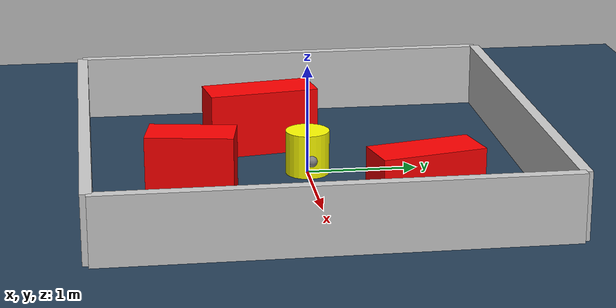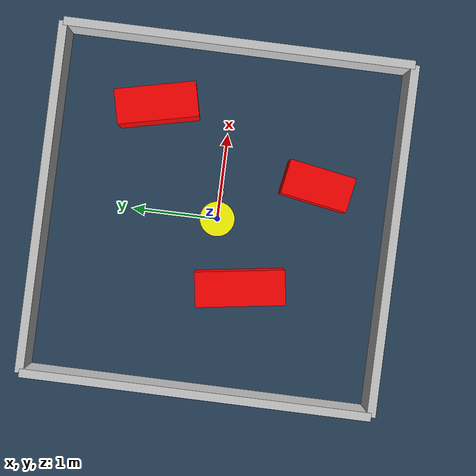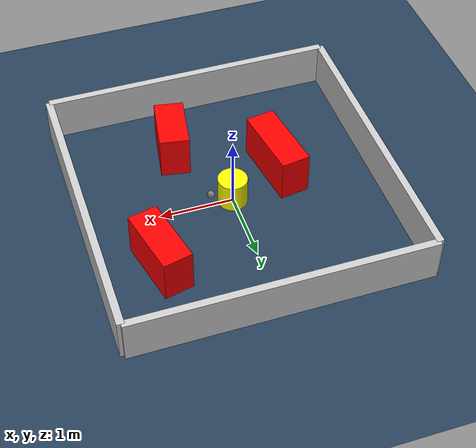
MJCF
<?xml version="1.0" ?>
<mujoco model="generated_environment">
  <option timestep="0.01" integrator="RK4" cone="elliptic"/>
  <default>
    <geom density="1"/>
  </default>
  <asset>
    <texture builtin="gradient" height="3072" rgb1="0.3 0.5 0.7" rgb2="0 0 0" type="skybox" width="512"/>
    <texture builtin="checker" height="300" mark="edge" markrgb="0.8 0.8 0.8" name="groundplane" rgb1="0.2 0.3 0.4" rgb2="0.1 0.2 0.3" type="2d" width="300"/>
    <material name="groundplane" reflectance="0.2" texrepeat="5 5" texture="groundplane" texuniform="true"/>
    <material name="robot" rgba="0.0 1.0 0.0 1"/>
  </asset>
  <worldbody>
    <light dir="0 0 -1" directional="true" pos="0 0 1.5"/>
    <geom condim="4" friction="1.0 0.005 0.001" material="groundplane" name="floor" size="0 0 0.05" type="plane"/>
    <body name="walls">
      <geom name="wall_1" condim="4" pos="-2.0 0.0 0.3" rgba="0.800000011920929 0.800000011920929 0.800000011920929 1.0" size="0.05 2.0 0.3" type="box"/>
      <geom name="wall_2" condim="4" pos="2.0 0.0 0.3" rgba="0.800000011920929 0.800000011920929 0.800000011920929 1.0" size="0.05 2.0 0.3" type="box"/>
      <geom name="wall_3" condim="4" pos="0.0 -2.0 0.3" rgba="0.800000011920929 0.800000011920929 0.800000011920929 1.0" size="2.0 0.05 0.3" type="box"/>
      <geom name="wall_4" condim="4" pos="0.0 2.0 0.3" rgba="0.800000011920929 0.800000011920929 0.800000011920929 1.0" size="2.0 0.05 0.3" type="box"/>
    </body>
    <body name="robot">
      <joint name="joint_x" type="slide" pos="0 0 0" axis="1 0 0"/>
      <joint name="joint_y" type="slide" pos="0 0 0" axis="0 1 0"/>
      <geom name="robot" type="sphere" pos="0.3 0.0 0.2" size="0.05" mass="5." friction="1.0 0.005 0.0001" condim="4" rgba="0.5 0.5 0.5 1.0"/>
      <site name="sensor_ball"/>
    </body>
    <body name="obstacle_movable_1">
      <geom name="obstacle_movable_1" condim="4" pos="0.0 0.0 0.2" euler="0 0 0.0" friction="1.0 0.005 0.001" rgba="1.0 1.0 0.0 1.0" size="0.2 0.2 0.0" type="cylinder" mass="0.1"/>
      <joint type="free"/>
    </body>
    <body name="obstacle_2_static">
      <geom name="obstacle_2_static" condim="4" pos="1.2154892742631098 0.8427557149680707 0.3" euler="0 0 282.80984048963626" friction="1.0 0.005 0.001" rgba="1 0 0 1" size="0.4646534932569648 0.2 0.3" type="box"/>
    </body>
    <body name="obstacle_3_static">
      <geom name="obstacle_3_static" condim="4" pos="-0.7473696297503016 -0.3536297116289555 0.3" euler="0 0 278.53602715042337" friction="1.0 0.005 0.001" rgba="1 0 0 1" size="0.5113466188669338 0.2 0.3" type="box"/>
    </body>
    <body name="obstacle_4_static">
      <geom name="obstacle_4_static" condim="4" pos="0.5142685850516684 -1.0855866254266515 0.3" euler="0 0 260.26881015341274" friction="1.0 0.005 0.001" rgba="1 0 0 1" size="0.38512500660037036 0.2 0.3" type="box"/>
    </body>
  </worldbody>
  <actuator>
    <motor name="actuator_x" joint="joint_x" gear="1" ctrlrange="-1 1"/>
    <motor name="actuator_y" joint="joint_y" gear="1" ctrlrange="-1 1"/>
  </actuator>
</mujoco>
